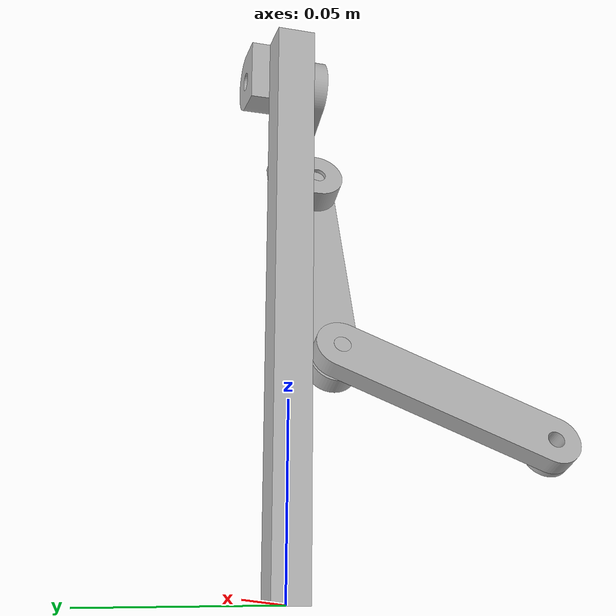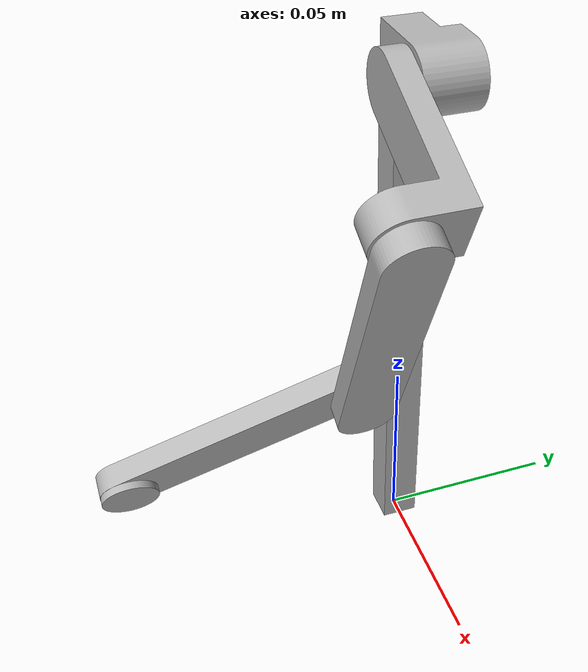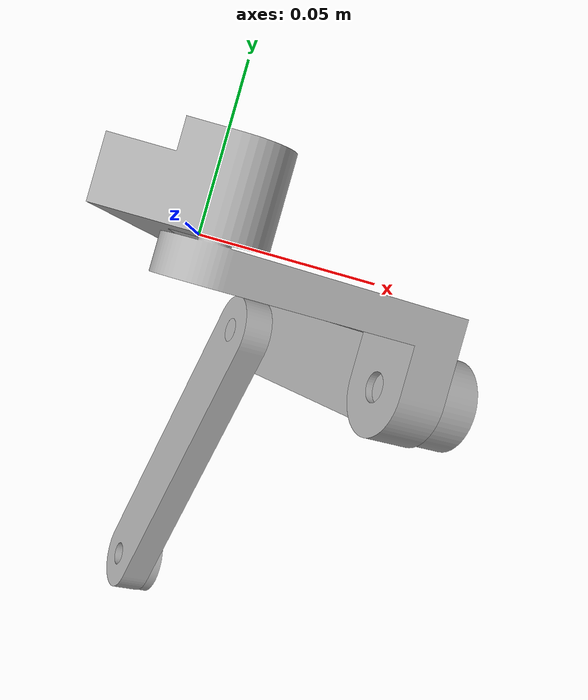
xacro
<?xml version="1.0" ?>
<robot name="leg_trial" xmlns:xacro="http://www.ros.org/wiki/xacro">

<xacro:include filename="$(find leg_trial_description)/urdf/materials.xacro" />
<xacro:include filename="$(find leg_trial_description)/urdf/leg_trial.trans" />
<xacro:include filename="$(find leg_trial_description)/urdf/leg_trial.gazebo" />
<link name="base_link">
  <inertial>
    <origin rpy="0 0 0" xyz="0.002105211243413883 0.0004319974773647484 0.08657753239337528"/>
    <mass value="0.14234750527522502"/>
    <inertia ixx="0.000314" ixy="-1e-06" ixz="-1.7e-05" iyy="0.000317" iyz="-3e-06" izz="6e-06"/>
  </inertial>
  <visual>
    <origin rpy="0 0 0" xyz="0 0 0"/>
    <geometry>
      <mesh filename="package://leg_trial_description/meshes/base_link.stl" scale="0.001 0.001 0.001"/>
    </geometry>
    <material name="silver_default"/>
  </visual>
  <collision>
    <origin rpy="0 0 0" xyz="0 0 0"/>
    <geometry>
      <mesh filename="package://leg_trial_description/meshes/base_link.stl" scale="0.001 0.001 0.001"/>
    </geometry>
  </collision>
</link>

<link name="hip_1">
  <inertial>
    <origin rpy="0 0 0" xyz="0.021308988284395168 -0.0062542363221017245 -0.00037552538765514565"/>
    <mass value="0.04969315621284487"/>
    <inertia ixx="3e-06" ixy="2e-06" ixz="0.0" iyy="1.2e-05" iyz="-0.0" izz="1.2e-05"/>
  </inertial>
  <visual>
    <origin rpy="0 0 0" xyz="-0.013 0.005 -0.142"/>
    <geometry>
      <mesh filename="package://leg_trial_description/meshes/hip_1.stl" scale="0.001 0.001 0.001"/>
    </geometry>
    <material name="silver_default"/>
  </visual>
  <collision>
    <origin rpy="0 0 0" xyz="-0.013 0.005 -0.142"/>
    <geometry>
      <mesh filename="package://leg_trial_description/meshes/hip_1.stl" scale="0.001 0.001 0.001"/>
    </geometry>
  </collision>
</link>

<link name="thigh_1">
  <inertial>
    <origin rpy="0 0 0" xyz="0.01042199486148579 -6.938893903907228e-18 -0.03268855519669914"/>
    <mass value="0.05640363849053903"/>
    <inertia ixx="3e-05" ixy="0.0" ixz="-1e-06" iyy="2.9e-05" iyz="-0.0" izz="1e-06"/>
  </inertial>
  <visual>
    <origin rpy="0 0 0" xyz="-0.044995 0.019856 -0.141436"/>
    <geometry>
      <mesh filename="package://leg_trial_description/meshes/thigh_1.stl" scale="0.001 0.001 0.001"/>
    </geometry>
    <material name="silver_default"/>
  </visual>
  <collision>
    <origin rpy="0 0 0" xyz="-0.044995 0.019856 -0.141436"/>
    <geometry>
      <mesh filename="package://leg_trial_description/meshes/thigh_1.stl" scale="0.001 0.001 0.001"/>
    </geometry>
  </collision>
</link>

<link name="leg_1">
  <inertial>
    <origin rpy="0 0 0" xyz="0.0027517692235868516 -0.029313365547886765 -0.014085206878428118"/>
    <mass value="0.0523961443618034"/>
    <inertia ixx="2.6e-05" ixy="-0.0" ixz="-0.0" iyy="6e-06" iyz="-9e-06" izz="2.1e-05"/>
  </inertial>
  <visual>
    <origin rpy="0 0 0" xyz="-0.045095 0.019856 -0.076424"/>
    <geometry>
      <mesh filename="package://leg_trial_description/meshes/leg_1.stl" scale="0.001 0.001 0.001"/>
    </geometry>
    <material name="silver_default"/>
  </visual>
  <collision>
    <origin rpy="0 0 0" xyz="-0.045095 0.019856 -0.076424"/>
    <geometry>
      <mesh filename="package://leg_trial_description/meshes/leg_1.stl" scale="0.001 0.001 0.001"/>
    </geometry>
  </collision>
</link>

<link name="foot_1">
  <inertial>
    <origin rpy="0 0 0" xyz="0.000999852652376676 2.6892503753039865e-07 -1.7343760567133104e-05"/>
    <mass value="0.0026985093513919246"/>
    <inertia ixx="0.0" ixy="0.0" ixz="-0.0" iyy="0.0" iyz="0.0" izz="0.0"/>
  </inertial>
  <visual>
    <origin rpy="0 0 0" xyz="-0.050599 0.078483 -0.048253"/>
    <geometry>
      <mesh filename="package://leg_trial_description/meshes/foot_1.stl" scale="0.001 0.001 0.001"/>
    </geometry>
    <material name="silver_default"/>
  </visual>
  <collision>
    <origin rpy="0 0 0" xyz="-0.050599 0.078483 -0.048253"/>
    <geometry>
      <mesh filename="package://leg_trial_description/meshes/foot_1.stl" scale="0.001 0.001 0.001"/>
    </geometry>
  </collision>
</link>

<joint name="hip_joint" type="revolute">
  <origin rpy="0 0 0" xyz="0.013 -0.005 0.142"/>
  <parent link="base_link"/>
  <child link="hip_1"/>
  <axis xyz="0.0 1.0 0.0"/>
  <limit effort="100" lower="0.017453" upper="0.785398" velocity="100"/>
</joint>

<joint name="femur_joint" type="revolute">
  <origin rpy="0 0 0" xyz="0.031995 -0.014856 -0.000564"/>
  <parent link="hip_1"/>
  <child link="thigh_1"/>
  <axis xyz="0.999845 0.0 -0.01762"/>
  <limit effort="100" lower="-1.570796" upper="1.570796" velocity="100"/>
</joint>

<joint name="tibia_joint" type="revolute">
  <origin rpy="0 0 0" xyz="0.0001 0.0 -0.065012"/>
  <parent link="thigh_1"/>
  <child link="leg_1"/>
  <axis xyz="-0.999845 -0.0 0.01762"/>
  <limit effort="100" lower="-1.570796" upper="1.570796" velocity="100"/>
</joint>

<joint name="Rigid8" type="fixed">
  <origin rpy="0 0 0" xyz="0.005504 -0.058627 -0.028171"/>
  <parent link="leg_1"/>
  <child link="foot_1"/>
</joint>

</robot>

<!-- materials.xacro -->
<robot name="leg_trial" xmlns:xacro="http://www.ros.org/wiki/xacro" >

<material name="silver_default">
  <color rgba="0.700 0.700 0.700 1.000"/>
</material>

</robot>

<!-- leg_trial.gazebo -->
<robot name="leg_trial" xmlns:xacro="http://www.ros.org/wiki/xacro" >

<xacro:property name="body_color" value="Gazebo/Silver" />

<gazebo>
  <plugin filename="libgazebo_ros_control.so" name="control"/>
</gazebo>
<gazebo reference="base_link">
  <material>${body_color}</material>
  <mu1>0.2</mu1>
  <mu2>0.2</mu2>
  <selfCollide>true</selfCollide>
  <gravity>true</gravity>
</gazebo>

<gazebo reference="hip_1">
  <material>${body_color}</material>
  <mu1>0.2</mu1>
  <mu2>0.2</mu2>
  <selfCollide>true</selfCollide>
</gazebo>

<gazebo reference="thigh_1">
  <material>${body_color}</material>
  <mu1>0.2</mu1>
  <mu2>0.2</mu2>
  <selfCollide>true</selfCollide>
</gazebo>

<gazebo reference="leg_1">
  <material>${body_color}</material>
  <mu1>0.2</mu1>
  <mu2>0.2</mu2>
  <selfCollide>true</selfCollide>
</gazebo>

<gazebo reference="foot_1">
  <material>${body_color}</material>
  <mu1>0.2</mu1>
  <mu2>0.2</mu2>
  <selfCollide>true</selfCollide>
</gazebo>

</robot>
